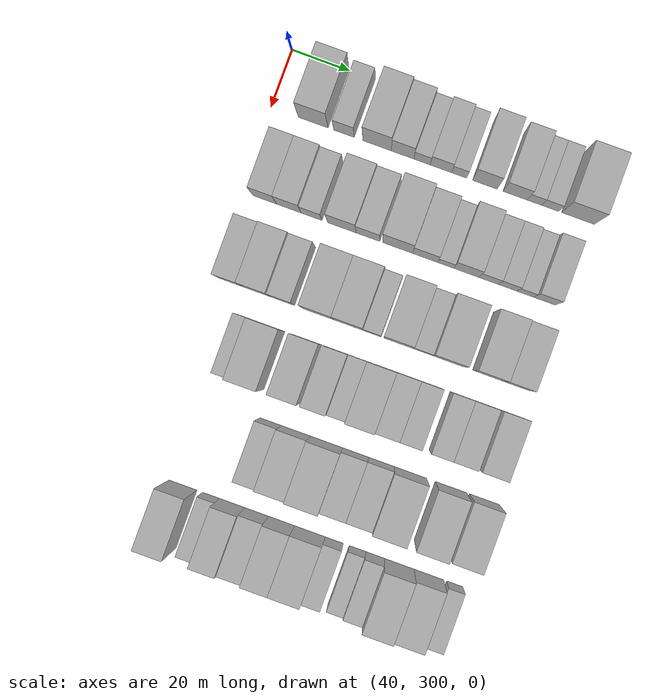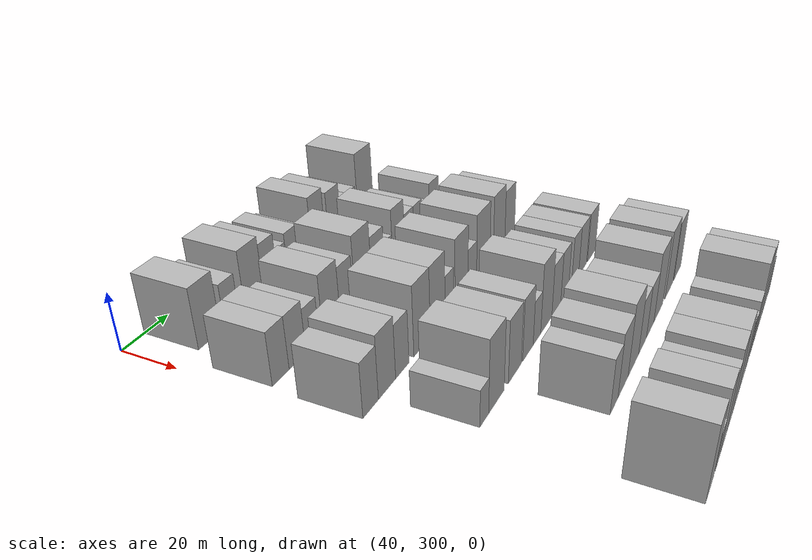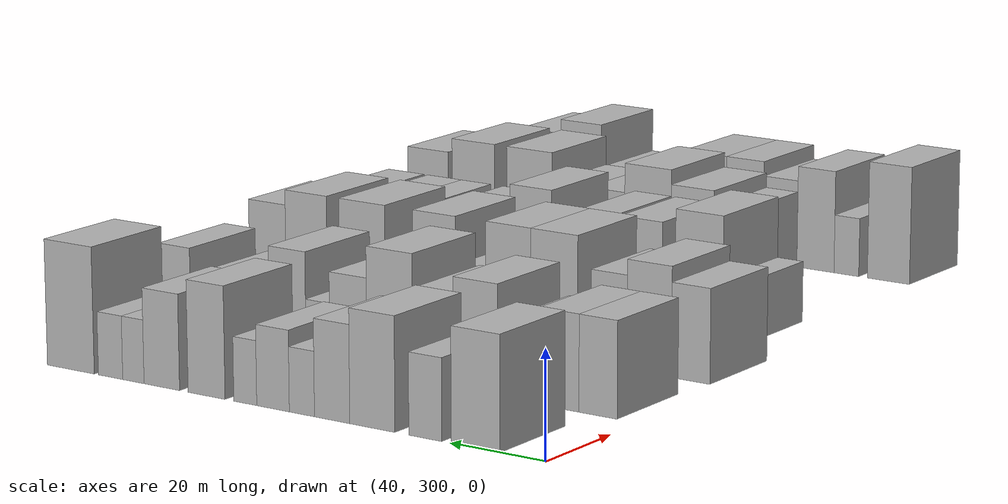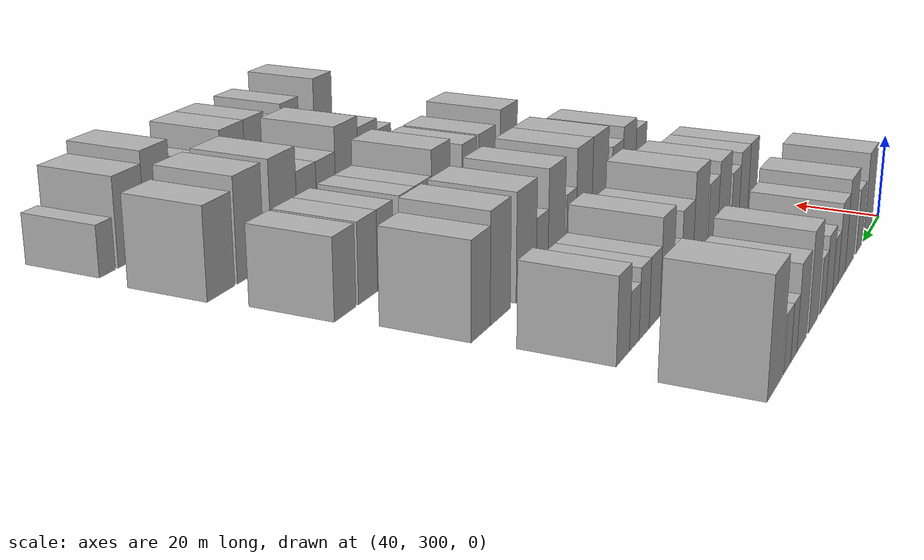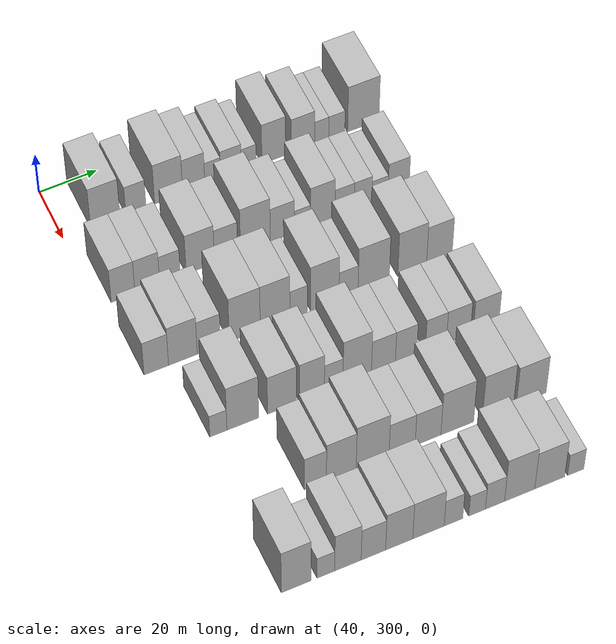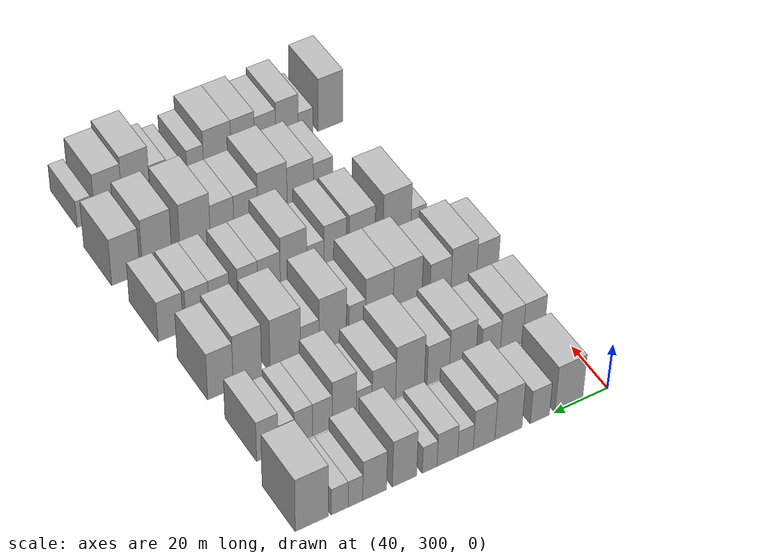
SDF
<sdf version="1.6">
 <world name="default">
  <model name="building_92">
   <static>1</static>
   <pose>50.0000 314.6391 0 0.000000 0.000000 0.000000</pose>
   <link name="link">
    <pose>0 0 10.50 0 0 0</pose>
    <collision name="collision"><geometry><box><size>20.0000 10.2359 21.0000</size></box></geometry></collision>
    <visual name="visual">
     <cast_shadows>0</cast_shadows>
     <geometry><box><size>20.0000 10.2359 21.0000</size></box></geometry>
     <material>
      <script>
       <uri>model://HANNAS_wall/materials/scripts</uri>
       <uri>model://HANNAS_wall/materials/textures</uri>
       <name>vrc/HANNAS_wall</name>
      </script>
     </material>
    </visual>
   </link>
  </model>
  <model name="building_93">
   <static>1</static>
   <pose>50.0000 325.2845 0 0.000000 0.000000 0.000000</pose>
   <link name="link">
    <pose>0 0 7.50 0 0 0</pose>
    <collision name="collision"><geometry><box><size>20.0000 7.0549 15.0000</size></box></geometry></collision>
    <visual name="visual">
     <cast_shadows>0</cast_shadows>
     <geometry><box><size>20.0000 7.0549 15.0000</size></box></geometry>
     <material>
      <script>
       <uri>model://HANNAS_wall/materials/scripts</uri>
       <uri>model://HANNAS_wall/materials/textures</uri>
       <name>vrc/HANNAS_wall</name>
      </script>
     </material>
    </visual>
   </link>
  </model>
  <model name="building_94">
   <static>1</static>
   <pose>50.0000 336.7338 0 0.000000 0.000000 0.000000</pose>
   <link name="link">
    <pose>0 0 10.50 0 0 0</pose>
    <collision name="collision"><geometry><box><size>20.0000 9.8437 21.0000</size></box></geometry></collision>
    <visual name="visual">
     <cast_shadows>0</cast_shadows>
     <geometry><box><size>20.0000 9.8437 21.0000</size></box></geometry>
     <material>
      <script>
       <uri>model://HANNAS_wall/materials/scripts</uri>
       <uri>model://HANNAS_wall/materials/textures</uri>
       <name>vrc/HANNAS_wall</name>
      </script>
     </material>
    </visual>
   </link>
  </model>
  <model name="building_95">
   <static>1</static>
   <pose>50.0000 345.5616 0 0.000000 0.000000 0.000000</pose>
   <link name="link">
    <pose>0 0 9.00 0 0 0</pose>
    <collision name="collision"><geometry><box><size>20.0000 7.8120 18.0000</size></box></geometry></collision>
    <visual name="visual">
     <cast_shadows>0</cast_shadows>
     <geometry><box><size>20.0000 7.8120 18.0000</size></box></geometry>
     <material>
      <script>
       <uri>model://HANNAS_wall/materials/scripts</uri>
       <uri>model://HANNAS_wall/materials/textures</uri>
       <name>vrc/HANNAS_wall</name>
      </script>
     </material>
    </visual>
   </link>
  </model>
  <model name="building_96">
   <static>1</static>
   <pose>50.0000 352.2765 0 0.000000 0.000000 0.000000</pose>
   <link name="link">
    <pose>0 0 6.00 0 0 0</pose>
    <collision name="collision"><geometry><box><size>20.0000 5.6176 12.0000</size></box></geometry></collision>
    <visual name="visual">
     <cast_shadows>0</cast_shadows>
     <geometry><box><size>20.0000 5.6176 12.0000</size></box></geometry>
     <material>
      <script>
       <uri>model://HANNAS_wall/materials/scripts</uri>
       <uri>model://HANNAS_wall/materials/textures</uri>
       <name>vrc/HANNAS_wall</name>
      </script>
     </material>
    </visual>
   </link>
  </model>
  <model name="building_97">
   <static>1</static>
   <pose>50.0000 358.7654 0 0.000000 0.000000 0.000000</pose>
   <link name="link">
    <pose>0 0 7.50 0 0 0</pose>
    <collision name="collision"><geometry><box><size>20.0000 7.3602 15.0000</size></box></geometry></collision>
    <visual name="visual">
     <cast_shadows>0</cast_shadows>
     <geometry><box><size>20.0000 7.3602 15.0000</size></box></geometry>
     <material>
      <script>
       <uri>model://HANNAS_wall/materials/scripts</uri>
       <uri>model://HANNAS_wall/materials/textures</uri>
       <name>vrc/HANNAS_wall</name>
      </script>
     </material>
    </visual>
   </link>
  </model>
  <model name="building_98">
   <static>1</static>
   <pose>50.0000 365.0564 0 0.000000 0.000000 0.000000</pose>
   <link name="link">
    <pose>0 0 6.00 0 0 0</pose>
    <collision name="collision"><geometry><box><size>20.0000 5.2218 12.0000</size></box></geometry></collision>
    <visual name="visual">
     <cast_shadows>0</cast_shadows>
     <geometry><box><size>20.0000 5.2218 12.0000</size></box></geometry>
     <material>
      <script>
       <uri>model://HANNAS_wall/materials/scripts</uri>
       <uri>model://HANNAS_wall/materials/textures</uri>
       <name>vrc/HANNAS_wall</name>
      </script>
     </material>
    </visual>
   </link>
  </model>
  <model name="building_99">
   <static>1</static>
   <pose>50.0000 373.9344 0 0.000000 0.000000 0.000000</pose>
   <link name="link">
    <pose>0 0 10.50 0 0 0</pose>
    <collision name="collision"><geometry><box><size>20.0000 8.5341 21.0000</size></box></geometry></collision>
    <visual name="visual">
     <cast_shadows>0</cast_shadows>
     <geometry><box><size>20.0000 8.5341 21.0000</size></box></geometry>
     <material>
      <script>
       <uri>model://HANNAS_wall/materials/scripts</uri>
       <uri>model://HANNAS_wall/materials/textures</uri>
       <name>vrc/HANNAS_wall</name>
      </script>
     </material>
    </visual>
   </link>
  </model>
  <model name="building_100">
   <static>1</static>
   <pose>50.0000 384.3697 0 0.000000 0.000000 0.000000</pose>
   <link name="link">
    <pose>0 0 9.00 0 0 0</pose>
    <collision name="collision"><geometry><box><size>20.0000 8.3364 18.0000</size></box></geometry></collision>
    <visual name="visual">
     <cast_shadows>0</cast_shadows>
     <geometry><box><size>20.0000 8.3364 18.0000</size></box></geometry>
     <material>
      <script>
       <uri>model://HANNAS_wall/materials/scripts</uri>
       <uri>model://HANNAS_wall/materials/textures</uri>
       <name>vrc/HANNAS_wall</name>
      </script>
     </material>
    </visual>
   </link>
  </model>
  <model name="building_101">
   <static>1</static>
   <pose>50.0000 391.0695 0 0.000000 0.000000 0.000000</pose>
   <link name="link">
    <pose>0 0 6.00 0 0 0</pose>
    <collision name="collision"><geometry><box><size>20.0000 5.0633 12.0000</size></box></geometry></collision>
    <visual name="visual">
     <cast_shadows>0</cast_shadows>
     <geometry><box><size>20.0000 5.0633 12.0000</size></box></geometry>
     <material>
      <script>
       <uri>model://HANNAS_wall/materials/scripts</uri>
       <uri>model://HANNAS_wall/materials/textures</uri>
       <name>vrc/HANNAS_wall</name>
      </script>
     </material>
    </visual>
   </link>
  </model>
  <model name="building_102">
   <static>1</static>
   <pose>50.0000 396.5043 0 0.000000 0.000000 0.000000</pose>
   <link name="link">
    <pose>0 0 6.00 0 0 0</pose>
    <collision name="collision"><geometry><box><size>20.0000 5.8061 12.0000</size></box></geometry></collision>
    <visual name="visual">
     <cast_shadows>0</cast_shadows>
     <geometry><box><size>20.0000 5.8061 12.0000</size></box></geometry>
     <material>
      <script>
       <uri>model://HANNAS_wall/materials/scripts</uri>
       <uri>model://HANNAS_wall/materials/textures</uri>
       <name>vrc/HANNAS_wall</name>
      </script>
     </material>
    </visual>
   </link>
  </model>
  <model name="building_103">
   <static>1</static>
   <pose>50.0000 406.0815 0 0.000000 0.000000 0.000000</pose>
   <link name="link">
    <pose>0 0 12.00 0 0 0</pose>
    <collision name="collision"><geometry><box><size>20.0000 11.3484 24.0000</size></box></geometry></collision>
    <visual name="visual">
     <cast_shadows>0</cast_shadows>
     <geometry><box><size>20.0000 11.3484 24.0000</size></box></geometry>
     <material>
      <script>
       <uri>model://HANNAS_wall/materials/scripts</uri>
       <uri>model://HANNAS_wall/materials/textures</uri>
       <name>vrc/HANNAS_wall</name>
      </script>
     </material>
    </visual>
   </link>
  </model>
  <model name="building_207">
   <static>1</static>
   <pose>79.0000 308.5416 0 0.000000 0.000000 0.000000</pose>
   <link name="link">
    <pose>0 0 9.00 0 0 0</pose>
    <collision name="collision"><geometry><box><size>20.0000 8.1234 18.0000</size></box></geometry></collision>
    <visual name="visual">
     <cast_shadows>0</cast_shadows>
     <geometry><box><size>20.0000 8.1234 18.0000</size></box></geometry>
     <material>
      <script>
       <uri>model://HANNAS_wall/materials/scripts</uri>
       <uri>model://HANNAS_wall/materials/textures</uri>
       <name>vrc/HANNAS_wall</name>
      </script>
     </material>
    </visual>
   </link>
  </model>
  <model name="building_208">
   <static>1</static>
   <pose>79.0000 316.8436 0 0.000000 0.000000 0.000000</pose>
   <link name="link">
    <pose>0 0 9.00 0 0 0</pose>
    <collision name="collision"><geometry><box><size>20.0000 8.4806 18.0000</size></box></geometry></collision>
    <visual name="visual">
     <cast_shadows>0</cast_shadows>
     <geometry><box><size>20.0000 8.4806 18.0000</size></box></geometry>
     <material>
      <script>
       <uri>model://HANNAS_wall/materials/scripts</uri>
       <uri>model://HANNAS_wall/materials/textures</uri>
       <name>vrc/HANNAS_wall</name>
      </script>
     </material>
    </visual>
   </link>
  </model>
  <model name="building_209">
   <static>1</static>
   <pose>79.0000 324.6524 0 0.000000 0.000000 0.000000</pose>
   <link name="link">
    <pose>0 0 7.50 0 0 0</pose>
    <collision name="collision"><geometry><box><size>20.0000 7.1371 15.0000</size></box></geometry></collision>
    <visual name="visual">
     <cast_shadows>0</cast_shadows>
     <geometry><box><size>20.0000 7.1371 15.0000</size></box></geometry>
     <material>
      <script>
       <uri>model://HANNAS_wall/materials/scripts</uri>
       <uri>model://HANNAS_wall/materials/textures</uri>
       <name>vrc/HANNAS_wall</name>
      </script>
     </material>
    </visual>
   </link>
  </model>
  <model name="building_210">
   <static>1</static>
   <pose>79.0000 335.1289 0 0.000000 0.000000 0.000000</pose>
   <link name="link">
    <pose>0 0 10.50 0 0 0</pose>
    <collision name="collision"><geometry><box><size>20.0000 9.8159 21.0000</size></box></geometry></collision>
    <visual name="visual">
     <cast_shadows>0</cast_shadows>
     <geometry><box><size>20.0000 9.8159 21.0000</size></box></geometry>
     <material>
      <script>
       <uri>model://HANNAS_wall/materials/scripts</uri>
       <uri>model://HANNAS_wall/materials/textures</uri>
       <name>vrc/HANNAS_wall</name>
      </script>
     </material>
    </visual>
   </link>
  </model>
  <model name="building_211">
   <static>1</static>
   <pose>79.0000 344.0842 0 0.000000 0.000000 0.000000</pose>
   <link name="link">
    <pose>0 0 9.00 0 0 0</pose>
    <collision name="collision"><geometry><box><size>20.0000 8.0946 18.0000</size></box></geometry></collision>
    <visual name="visual">
     <cast_shadows>0</cast_shadows>
     <geometry><box><size>20.0000 8.0946 18.0000</size></box></geometry>
     <material>
      <script>
       <uri>model://HANNAS_wall/materials/scripts</uri>
       <uri>model://HANNAS_wall/materials/textures</uri>
       <name>vrc/HANNAS_wall</name>
      </script>
     </material>
    </visual>
   </link>
  </model>
  <model name="building_212">
   <static>1</static>
   <pose>79.0000 354.3219 0 0.000000 0.000000 0.000000</pose>
   <link name="link">
    <pose>0 0 12.00 0 0 0</pose>
    <collision name="collision"><geometry><box><size>20.0000 10.3809 24.0000</size></box></geometry></collision>
    <visual name="visual">
     <cast_shadows>0</cast_shadows>
     <geometry><box><size>20.0000 10.3809 24.0000</size></box></geometry>
     <material>
      <script>
       <uri>model://HANNAS_wall/materials/scripts</uri>
       <uri>model://HANNAS_wall/materials/textures</uri>
       <name>vrc/HANNAS_wall</name>
      </script>
     </material>
    </visual>
   </link>
  </model>
  <model name="building_213">
   <static>1</static>
   <pose>79.0000 363.7801 0 0.000000 0.000000 0.000000</pose>
   <link name="link">
    <pose>0 0 9.00 0 0 0</pose>
    <collision name="collision"><geometry><box><size>20.0000 8.5355 18.0000</size></box></geometry></collision>
    <visual name="visual">
     <cast_shadows>0</cast_shadows>
     <geometry><box><size>20.0000 8.5355 18.0000</size></box></geometry>
     <material>
      <script>
       <uri>model://HANNAS_wall/materials/scripts</uri>
       <uri>model://HANNAS_wall/materials/textures</uri>
       <name>vrc/HANNAS_wall</name>
      </script>
     </material>
    </visual>
   </link>
  </model>
  <model name="building_214">
   <static>1</static>
   <pose>79.0000 370.8349 0 0.000000 0.000000 0.000000</pose>
   <link name="link">
    <pose>0 0 6.00 0 0 0</pose>
    <collision name="collision"><geometry><box><size>20.0000 5.5740 12.0000</size></box></geometry></collision>
    <visual name="visual">
     <cast_shadows>0</cast_shadows>
     <geometry><box><size>20.0000 5.5740 12.0000</size></box></geometry>
     <material>
      <script>
       <uri>model://HANNAS_wall/materials/scripts</uri>
       <uri>model://HANNAS_wall/materials/textures</uri>
       <name>vrc/HANNAS_wall</name>
      </script>
     </material>
    </visual>
   </link>
  </model>
  <model name="building_215">
   <static>1</static>
   <pose>79.0000 377.9334 0 0.000000 0.000000 0.000000</pose>
   <link name="link">
    <pose>0 0 10.50 0 0 0</pose>
    <collision name="collision"><geometry><box><size>20.0000 8.6232 21.0000</size></box></geometry></collision>
    <visual name="visual">
     <cast_shadows>0</cast_shadows>
     <geometry><box><size>20.0000 8.6232 21.0000</size></box></geometry>
     <material>
      <script>
       <uri>model://HANNAS_wall/materials/scripts</uri>
       <uri>model://HANNAS_wall/materials/textures</uri>
       <name>vrc/HANNAS_wall</name>
      </script>
     </material>
    </visual>
   </link>
  </model>
  <model name="building_216">
   <static>1</static>
   <pose>79.0000 385.6756 0 0.000000 0.000000 0.000000</pose>
   <link name="link">
    <pose>0 0 7.50 0 0 0</pose>
    <collision name="collision"><geometry><box><size>20.0000 6.8612 15.0000</size></box></geometry></collision>
    <visual name="visual">
     <cast_shadows>0</cast_shadows>
     <geometry><box><size>20.0000 6.8612 15.0000</size></box></geometry>
     <material>
      <script>
       <uri>model://HANNAS_wall/materials/scripts</uri>
       <uri>model://HANNAS_wall/materials/textures</uri>
       <name>vrc/HANNAS_wall</name>
      </script>
     </material>
    </visual>
   </link>
  </model>
  <model name="building_217">
   <static>1</static>
   <pose>79.0000 392.2412 0 0.000000 0.000000 0.000000</pose>
   <link name="link">
    <pose>0 0 7.50 0 0 0</pose>
    <collision name="collision"><geometry><box><size>20.0000 6.2700 15.0000</size></box></geometry></collision>
    <visual name="visual">
     <cast_shadows>0</cast_shadows>
     <geometry><box><size>20.0000 6.2700 15.0000</size></box></geometry>
     <material>
      <script>
       <uri>model://HANNAS_wall/materials/scripts</uri>
       <uri>model://HANNAS_wall/materials/textures</uri>
       <name>vrc/HANNAS_wall</name>
      </script>
     </material>
    </visual>
   </link>
  </model>
  <model name="building_218">
   <static>1</static>
   <pose>79.0000 398.2503 0 0.000000 0.000000 0.000000</pose>
   <link name="link">
    <pose>0 0 6.00 0 0 0</pose>
    <collision name="collision"><geometry><box><size>20.0000 5.7481 12.0000</size></box></geometry></collision>
    <visual name="visual">
     <cast_shadows>0</cast_shadows>
     <geometry><box><size>20.0000 5.7481 12.0000</size></box></geometry>
     <material>
      <script>
       <uri>model://HANNAS_wall/materials/scripts</uri>
       <uri>model://HANNAS_wall/materials/textures</uri>
       <name>vrc/HANNAS_wall</name>
      </script>
     </material>
    </visual>
   </link>
  </model>
  <model name="building_219">
   <static>1</static>
   <pose>79.0000 404.8839 0 0.000000 0.000000 0.000000</pose>
   <link name="link">
    <pose>0 0 9.00 0 0 0</pose>
    <collision name="collision"><geometry><box><size>20.0000 7.5190 18.0000</size></box></geometry></collision>
    <visual name="visual">
     <cast_shadows>0</cast_shadows>
     <geometry><box><size>20.0000 7.5190 18.0000</size></box></geometry>
     <material>
      <script>
       <uri>model://HANNAS_wall/materials/scripts</uri>
       <uri>model://HANNAS_wall/materials/textures</uri>
       <name>vrc/HANNAS_wall</name>
      </script>
     </material>
    </visual>
   </link>
  </model>
  <model name="building_317">
   <static>1</static>
   <pose>108.0000 307.4348 0 0.000000 0.000000 0.000000</pose>
   <link name="link">
    <pose>0 0 9.00 0 0 0</pose>
    <collision name="collision"><geometry><box><size>20.0000 8.3057 18.0000</size></box></geometry></collision>
    <visual name="visual">
     <cast_shadows>0</cast_shadows>
     <geometry><box><size>20.0000 8.3057 18.0000</size></box></geometry>
     <material>
      <script>
       <uri>model://HANNAS_wall/materials/scripts</uri>
       <uri>model://HANNAS_wall/materials/textures</uri>
       <name>vrc/HANNAS_wall</name>
      </script>
     </material>
    </visual>
   </link>
  </model>
  <model name="building_318">
   <static>1</static>
   <pose>108.0000 316.4542 0 0.000000 0.000000 0.000000</pose>
   <link name="link">
    <pose>0 0 10.50 0 0 0</pose>
    <collision name="collision"><geometry><box><size>20.0000 9.7331 21.0000</size></box></geometry></collision>
    <visual name="visual">
     <cast_shadows>0</cast_shadows>
     <geometry><box><size>20.0000 9.7331 21.0000</size></box></geometry>
     <material>
      <script>
       <uri>model://HANNAS_wall/materials/scripts</uri>
       <uri>model://HANNAS_wall/materials/textures</uri>
       <name>vrc/HANNAS_wall</name>
      </script>
     </material>
    </visual>
   </link>
  </model>
  <model name="building_319">
   <static>1</static>
   <pose>108.0000 325.3017 0 0.000000 0.000000 0.000000</pose>
   <link name="link">
    <pose>0 0 9.00 0 0 0</pose>
    <collision name="collision"><geometry><box><size>20.0000 7.9619 18.0000</size></box></geometry></collision>
    <visual name="visual">
     <cast_shadows>0</cast_shadows>
     <geometry><box><size>20.0000 7.9619 18.0000</size></box></geometry>
     <material>
      <script>
       <uri>model://HANNAS_wall/materials/scripts</uri>
       <uri>model://HANNAS_wall/materials/textures</uri>
       <name>vrc/HANNAS_wall</name>
      </script>
     </material>
    </visual>
   </link>
  </model>
  <model name="building_320">
   <static>1</static>
   <pose>108.0000 337.5891 0 0.000000 0.000000 0.000000</pose>
   <link name="link">
    <pose>0 0 12.00 0 0 0</pose>
    <collision name="collision"><geometry><box><size>20.0000 10.6128 24.0000</size></box></geometry></collision>
    <visual name="visual">
     <cast_shadows>0</cast_shadows>
     <geometry><box><size>20.0000 10.6128 24.0000</size></box></geometry>
     <material>
      <script>
       <uri>model://HANNAS_wall/materials/scripts</uri>
       <uri>model://HANNAS_wall/materials/textures</uri>
       <name>vrc/HANNAS_wall</name>
      </script>
     </material>
    </visual>
   </link>
  </model>
  <model name="building_321">
   <static>1</static>
   <pose>108.0000 348.0040 0 0.000000 0.000000 0.000000</pose>
   <link name="link">
    <pose>0 0 12.00 0 0 0</pose>
    <collision name="collision"><geometry><box><size>20.0000 10.2171 24.0000</size></box></geometry></collision>
    <visual name="visual">
     <cast_shadows>0</cast_shadows>
     <geometry><box><size>20.0000 10.2171 24.0000</size></box></geometry>
     <material>
      <script>
       <uri>model://HANNAS_wall/materials/scripts</uri>
       <uri>model://HANNAS_wall/materials/textures</uri>
       <name>vrc/HANNAS_wall</name>
      </script>
     </material>
    </visual>
   </link>
  </model>
  <model name="building_322">
   <static>1</static>
   <pose>108.0000 356.1308 0 0.000000 0.000000 0.000000</pose>
   <link name="link">
    <pose>0 0 7.50 0 0 0</pose>
    <collision name="collision"><geometry><box><size>20.0000 6.0365 15.0000</size></box></geometry></collision>
    <visual name="visual">
     <cast_shadows>0</cast_shadows>
     <geometry><box><size>20.0000 6.0365 15.0000</size></box></geometry>
     <material>
      <script>
       <uri>model://HANNAS_wall/materials/scripts</uri>
       <uri>model://HANNAS_wall/materials/textures</uri>
       <name>vrc/HANNAS_wall</name>
      </script>
     </material>
    </visual>
   </link>
  </model>
  <model name="building_323">
   <static>1</static>
   <pose>108.0000 365.1079 0 0.000000 0.000000 0.000000</pose>
   <link name="link">
    <pose>0 0 12.00 0 0 0</pose>
    <collision name="collision"><geometry><box><size>20.0000 9.9177 24.0000</size></box></geometry></collision>
    <visual name="visual">
     <cast_shadows>0</cast_shadows>
     <geometry><box><size>20.0000 9.9177 24.0000</size></box></geometry>
     <material>
      <script>
       <uri>model://HANNAS_wall/materials/scripts</uri>
       <uri>model://HANNAS_wall/materials/textures</uri>
       <name>vrc/HANNAS_wall</name>
      </script>
     </material>
    </visual>
   </link>
  </model>
  <model name="building_324">
   <static>1</static>
   <pose>108.0000 373.3950 0 0.000000 0.000000 0.000000</pose>
   <link name="link">
    <pose>0 0 7.50 0 0 0</pose>
    <collision name="collision"><geometry><box><size>20.0000 6.6564 15.0000</size></box></geometry></collision>
    <visual name="visual">
     <cast_shadows>0</cast_shadows>
     <geometry><box><size>20.0000 6.6564 15.0000</size></box></geometry>
     <material>
      <script>
       <uri>model://HANNAS_wall/materials/scripts</uri>
       <uri>model://HANNAS_wall/materials/textures</uri>
       <name>vrc/HANNAS_wall</name>
      </script>
     </material>
    </visual>
   </link>
  </model>
  <model name="building_325">
   <static>1</static>
   <pose>108.0000 382.1819 0 0.000000 0.000000 0.000000</pose>
   <link name="link">
    <pose>0 0 12.00 0 0 0</pose>
    <collision name="collision"><geometry><box><size>20.0000 10.9174 24.0000</size></box></geometry></collision>
    <visual name="visual">
     <cast_shadows>0</cast_shadows>
     <geometry><box><size>20.0000 10.9174 24.0000</size></box></geometry>
     <material>
      <script>
       <uri>model://HANNAS_wall/materials/scripts</uri>
       <uri>model://HANNAS_wall/materials/textures</uri>
       <name>vrc/HANNAS_wall</name>
      </script>
     </material>
    </visual>
   </link>
  </model>
  <model name="building_326">
   <static>1</static>
   <pose>108.0000 395.6970 0 0.000000 0.000000 0.000000</pose>
   <link name="link">
    <pose>0 0 12.00 0 0 0</pose>
    <collision name="collision"><geometry><box><size>20.0000 10.1128 24.0000</size></box></geometry></collision>
    <visual name="visual">
     <cast_shadows>0</cast_shadows>
     <geometry><box><size>20.0000 10.1128 24.0000</size></box></geometry>
     <material>
      <script>
       <uri>model://HANNAS_wall/materials/scripts</uri>
       <uri>model://HANNAS_wall/materials/textures</uri>
       <name>vrc/HANNAS_wall</name>
      </script>
     </material>
    </visual>
   </link>
  </model>
  <model name="building_327">
   <static>1</static>
   <pose>108.0000 405.2794 0 0.000000 0.000000 0.000000</pose>
   <link name="link">
    <pose>0 0 10.50 0 0 0</pose>
    <collision name="collision"><geometry><box><size>20.0000 9.0520 21.0000</size></box></geometry></collision>
    <visual name="visual">
     <cast_shadows>0</cast_shadows>
     <geometry><box><size>20.0000 9.0520 21.0000</size></box></geometry>
     <material>
      <script>
       <uri>model://HANNAS_wall/materials/scripts</uri>
       <uri>model://HANNAS_wall/materials/textures</uri>
       <name>vrc/HANNAS_wall</name>
      </script>
     </material>
    </visual>
   </link>
  </model>
  <model name="building_428">
   <static>1</static>
   <pose>137.0000 315.6591 0 0.000000 0.000000 0.000000</pose>
   <link name="link">
    <pose>0 0 6.00 0 0 0</pose>
    <collision name="collision"><geometry><box><size>20.0000 5.7542 12.0000</size></box></geometry></collision>
    <visual name="visual">
     <cast_shadows>0</cast_shadows>
     <geometry><box><size>20.0000 5.7542 12.0000</size></box></geometry>
     <material>
      <script>
       <uri>model://HANNAS_wall/materials/scripts</uri>
       <uri>model://HANNAS_wall/materials/textures</uri>
       <name>vrc/HANNAS_wall</name>
      </script>
     </material>
    </visual>
   </link>
  </model>
  <model name="building_429">
   <static>1</static>
   <pose>137.0000 323.8834 0 0.000000 0.000000 0.000000</pose>
   <link name="link">
    <pose>0 0 12.00 0 0 0</pose>
    <collision name="collision"><geometry><box><size>20.0000 10.6945 24.0000</size></box></geometry></collision>
    <visual name="visual">
     <cast_shadows>0</cast_shadows>
     <geometry><box><size>20.0000 10.6945 24.0000</size></box></geometry>
     <material>
      <script>
       <uri>model://HANNAS_wall/materials/scripts</uri>
       <uri>model://HANNAS_wall/materials/textures</uri>
       <name>vrc/HANNAS_wall</name>
      </script>
     </material>
    </visual>
   </link>
  </model>
  <model name="building_430">
   <static>1</static>
   <pose>137.0000 337.1143 0 0.000000 0.000000 0.000000</pose>
   <link name="link">
    <pose>0 0 10.50 0 0 0</pose>
    <collision name="collision"><geometry><box><size>20.0000 9.7673 21.0000</size></box></geometry></collision>
    <visual name="visual">
     <cast_shadows>0</cast_shadows>
     <geometry><box><size>20.0000 9.7673 21.0000</size></box></geometry>
     <material>
      <script>
       <uri>model://HANNAS_wall/materials/scripts</uri>
       <uri>model://HANNAS_wall/materials/textures</uri>
       <name>vrc/HANNAS_wall</name>
      </script>
     </material>
    </visual>
   </link>
  </model>
  <model name="building_431">
   <static>1</static>
   <pose>137.0000 347.2452 0 0.000000 0.000000 0.000000</pose>
   <link name="link">
    <pose>0 0 10.50 0 0 0</pose>
    <collision name="collision"><geometry><box><size>20.0000 8.4945 21.0000</size></box></geometry></collision>
    <visual name="visual">
     <cast_shadows>0</cast_shadows>
     <geometry><box><size>20.0000 8.4945 21.0000</size></box></geometry>
     <material>
      <script>
       <uri>model://HANNAS_wall/materials/scripts</uri>
       <uri>model://HANNAS_wall/materials/textures</uri>
       <name>vrc/HANNAS_wall</name>
      </script>
     </material>
    </visual>
   </link>
  </model>
  <model name="building_432">
   <static>1</static>
   <pose>137.0000 354.6520 0 0.000000 0.000000 0.000000</pose>
   <link name="link">
    <pose>0 0 7.50 0 0 0</pose>
    <collision name="collision"><geometry><box><size>20.0000 6.3190 15.0000</size></box></geometry></collision>
    <visual name="visual">
     <cast_shadows>0</cast_shadows>
     <geometry><box><size>20.0000 6.3190 15.0000</size></box></geometry>
     <material>
      <script>
       <uri>model://HANNAS_wall/materials/scripts</uri>
       <uri>model://HANNAS_wall/materials/textures</uri>
       <name>vrc/HANNAS_wall</name>
      </script>
     </material>
    </visual>
   </link>
  </model>
  <model name="building_433">
   <static>1</static>
   <pose>137.0000 362.7062 0 0.000000 0.000000 0.000000</pose>
   <link name="link">
    <pose>0 0 12.00 0 0 0</pose>
    <collision name="collision"><geometry><box><size>20.0000 9.7895 24.0000</size></box></geometry></collision>
    <visual name="visual">
     <cast_shadows>0</cast_shadows>
     <geometry><box><size>20.0000 9.7895 24.0000</size></box></geometry>
     <material>
      <script>
       <uri>model://HANNAS_wall/materials/scripts</uri>
       <uri>model://HANNAS_wall/materials/textures</uri>
       <name>vrc/HANNAS_wall</name>
      </script>
     </material>
    </visual>
   </link>
  </model>
  <model name="building_434">
   <static>1</static>
   <pose>137.0000 371.7099 0 0.000000 0.000000 0.000000</pose>
   <link name="link">
    <pose>0 0 9.00 0 0 0</pose>
    <collision name="collision"><geometry><box><size>20.0000 8.2178 18.0000</size></box></geometry></collision>
    <visual name="visual">
     <cast_shadows>0</cast_shadows>
     <geometry><box><size>20.0000 8.2178 18.0000</size></box></geometry>
     <material>
      <script>
       <uri>model://HANNAS_wall/materials/scripts</uri>
       <uri>model://HANNAS_wall/materials/textures</uri>
       <name>vrc/HANNAS_wall</name>
      </script>
     </material>
    </visual>
   </link>
  </model>
  <model name="building_435">
   <static>1</static>
   <pose>137.0000 379.5073 0 0.000000 0.000000 0.000000</pose>
   <link name="link">
    <pose>0 0 9.00 0 0 0</pose>
    <collision name="collision"><geometry><box><size>20.0000 7.3770 18.0000</size></box></geometry></collision>
    <visual name="visual">
     <cast_shadows>0</cast_shadows>
     <geometry><box><size>20.0000 7.3770 18.0000</size></box></geometry>
     <material>
      <script>
       <uri>model://HANNAS_wall/materials/scripts</uri>
       <uri>model://HANNAS_wall/materials/textures</uri>
       <name>vrc/HANNAS_wall</name>
      </script>
     </material>
    </visual>
   </link>
  </model>
  <model name="building_436">
   <static>1</static>
   <pose>137.0000 389.8574 0 0.000000 0.000000 0.000000</pose>
   <link name="link">
    <pose>0 0 9.00 0 0 0</pose>
    <collision name="collision"><geometry><box><size>20.0000 7.3232 18.0000</size></box></geometry></collision>
    <visual name="visual">
     <cast_shadows>0</cast_shadows>
     <geometry><box><size>20.0000 7.3232 18.0000</size></box></geometry>
     <material>
      <script>
       <uri>model://HANNAS_wall/materials/scripts</uri>
       <uri>model://HANNAS_wall/materials/textures</uri>
       <name>vrc/HANNAS_wall</name>
      </script>
     </material>
    </visual>
   </link>
  </model>
  <model name="building_437">
   <static>1</static>
   <pose>137.0000 397.7015 0 0.000000 0.000000 0.000000</pose>
   <link name="link">
    <pose>0 0 9.00 0 0 0</pose>
    <collision name="collision"><geometry><box><size>20.0000 8.3649 18.0000</size></box></geometry></collision>
    <visual name="visual">
     <cast_shadows>0</cast_shadows>
     <geometry><box><size>20.0000 8.3649 18.0000</size></box></geometry>
     <material>
      <script>
       <uri>model://HANNAS_wall/materials/scripts</uri>
       <uri>model://HANNAS_wall/materials/textures</uri>
       <name>vrc/HANNAS_wall</name>
      </script>
     </material>
    </visual>
   </link>
  </model>
  <model name="building_438">
   <static>1</static>
   <pose>137.0000 407.3667 0 0.000000 0.000000 0.000000</pose>
   <link name="link">
    <pose>0 0 9.00 0 0 0</pose>
    <collision name="collision"><geometry><box><size>20.0000 8.9656 18.0000</size></box></geometry></collision>
    <visual name="visual">
     <cast_shadows>0</cast_shadows>
     <geometry><box><size>20.0000 8.9656 18.0000</size></box></geometry>
     <material>
      <script>
       <uri>model://HANNAS_wall/materials/scripts</uri>
       <uri>model://HANNAS_wall/materials/textures</uri>
       <name>vrc/HANNAS_wall</name>
      </script>
     </material>
    </visual>
   </link>
  </model>
  <model name="building_546">
   <static>1</static>
   <pose>166.0000 334.9736 0 0.000000 0.000000 0.000000</pose>
   <link name="link">
    <pose>0 0 9.00 0 0 0</pose>
    <collision name="collision"><geometry><box><size>20.0000 7.3625 18.0000</size></box></geometry></collision>
    <visual name="visual">
     <cast_shadows>0</cast_shadows>
     <geometry><box><size>20.0000 7.3625 18.0000</size></box></geometry>
     <material>
      <script>
       <uri>model://HANNAS_wall/materials/scripts</uri>
       <uri>model://HANNAS_wall/materials/textures</uri>
       <name>vrc/HANNAS_wall</name>
      </script>
     </material>
    </visual>
   </link>
  </model>
  <model name="building_547">
   <static>1</static>
   <pose>166.0000 343.6535 0 0.000000 0.000000 0.000000</pose>
   <link name="link">
    <pose>0 0 10.50 0 0 0</pose>
    <collision name="collision"><geometry><box><size>20.0000 9.9973 21.0000</size></box></geometry></collision>
    <visual name="visual">
     <cast_shadows>0</cast_shadows>
     <geometry><box><size>20.0000 9.9973 21.0000</size></box></geometry>
     <material>
      <script>
       <uri>model://HANNAS_wall/materials/scripts</uri>
       <uri>model://HANNAS_wall/materials/textures</uri>
       <name>vrc/HANNAS_wall</name>
      </script>
     </material>
    </visual>
   </link>
  </model>
  <model name="building_548">
   <static>1</static>
   <pose>166.0000 354.1891 0 0.000000 0.000000 0.000000</pose>
   <link name="link">
    <pose>0 0 12.00 0 0 0</pose>
    <collision name="collision"><geometry><box><size>20.0000 11.0739 24.0000</size></box></geometry></collision>
    <visual name="visual">
     <cast_shadows>0</cast_shadows>
     <geometry><box><size>20.0000 11.0739 24.0000</size></box></geometry>
     <material>
      <script>
       <uri>model://HANNAS_wall/materials/scripts</uri>
       <uri>model://HANNAS_wall/materials/textures</uri>
       <name>vrc/HANNAS_wall</name>
      </script>
     </material>
    </visual>
   </link>
  </model>
  <model name="building_549">
   <static>1</static>
   <pose>166.0000 364.1571 0 0.000000 0.000000 0.000000</pose>
   <link name="link">
    <pose>0 0 9.00 0 0 0</pose>
    <collision name="collision"><geometry><box><size>20.0000 8.8621 18.0000</size></box></geometry></collision>
    <visual name="visual">
     <cast_shadows>0</cast_shadows>
     <geometry><box><size>20.0000 8.8621 18.0000</size></box></geometry>
     <material>
      <script>
       <uri>model://HANNAS_wall/materials/scripts</uri>
       <uri>model://HANNAS_wall/materials/textures</uri>
       <name>vrc/HANNAS_wall</name>
      </script>
     </material>
    </visual>
   </link>
  </model>
  <model name="building_550">
   <static>1</static>
   <pose>166.0000 372.9795 0 0.000000 0.000000 0.000000</pose>
   <link name="link">
    <pose>0 0 9.00 0 0 0</pose>
    <collision name="collision"><geometry><box><size>20.0000 8.7829 18.0000</size></box></geometry></collision>
    <visual name="visual">
     <cast_shadows>0</cast_shadows>
     <geometry><box><size>20.0000 8.7829 18.0000</size></box></geometry>
     <material>
      <script>
       <uri>model://HANNAS_wall/materials/scripts</uri>
       <uri>model://HANNAS_wall/materials/textures</uri>
       <name>vrc/HANNAS_wall</name>
      </script>
     </material>
    </visual>
   </link>
  </model>
  <model name="building_551">
   <static>1</static>
   <pose>166.0000 382.9670 0 0.000000 0.000000 0.000000</pose>
   <link name="link">
    <pose>0 0 12.00 0 0 0</pose>
    <collision name="collision"><geometry><box><size>20.0000 11.1921 24.0000</size></box></geometry></collision>
    <visual name="visual">
     <cast_shadows>0</cast_shadows>
     <geometry><box><size>20.0000 11.1921 24.0000</size></box></geometry>
     <material>
      <script>
       <uri>model://HANNAS_wall/materials/scripts</uri>
       <uri>model://HANNAS_wall/materials/textures</uri>
       <name>vrc/HANNAS_wall</name>
      </script>
     </material>
    </visual>
   </link>
  </model>
  <model name="building_552">
   <static>1</static>
   <pose>166.0000 396.9219 0 0.000000 0.000000 0.000000</pose>
   <link name="link">
    <pose>0 0 12.00 0 0 0</pose>
    <collision name="collision"><geometry><box><size>20.0000 10.7177 24.0000</size></box></geometry></collision>
    <visual name="visual">
     <cast_shadows>0</cast_shadows>
     <geometry><box><size>20.0000 10.7177 24.0000</size></box></geometry>
     <material>
      <script>
       <uri>model://HANNAS_wall/materials/scripts</uri>
       <uri>model://HANNAS_wall/materials/textures</uri>
       <name>vrc/HANNAS_wall</name>
      </script>
     </material>
    </visual>
   </link>
  </model>
  <model name="building_553">
   <static>1</static>
   <pose>166.0000 408.4272 0 0.000000 0.000000 0.000000</pose>
   <link name="link">
    <pose>0 0 10.50 0 0 0</pose>
    <collision name="collision"><geometry><box><size>20.0000 10.2929 21.0000</size></box></geometry></collision>
    <visual name="visual">
     <cast_shadows>0</cast_shadows>
     <geometry><box><size>20.0000 10.2929 21.0000</size></box></geometry>
     <material>
      <script>
       <uri>model://HANNAS_wall/materials/scripts</uri>
       <uri>model://HANNAS_wall/materials/textures</uri>
       <name>vrc/HANNAS_wall</name>
      </script>
     </material>
    </visual>
   </link>
  </model>
  <model name="building_652">
   <static>1</static>
   <pose>195.0000 315.2109 0 0.000000 0.000000 0.000000</pose>
   <link name="link">
    <pose>0 0 12.00 0 0 0</pose>
    <collision name="collision"><geometry><box><size>20.0000 9.6859 24.0000</size></box></geometry></collision>
    <visual name="visual">
     <cast_shadows>0</cast_shadows>
     <geometry><box><size>20.0000 9.6859 24.0000</size></box></geometry>
     <material>
      <script>
       <uri>model://HANNAS_wall/materials/scripts</uri>
       <uri>model://HANNAS_wall/materials/textures</uri>
       <name>vrc/HANNAS_wall</name>
      </script>
     </material>
    </visual>
   </link>
  </model>
  <model name="building_653">
   <static>1</static>
   <pose>195.0000 324.9436 0 0.000000 0.000000 0.000000</pose>
   <link name="link">
    <pose>0 0 6.00 0 0 0</pose>
    <collision name="collision"><geometry><box><size>20.0000 5.7794 12.0000</size></box></geometry></collision>
    <visual name="visual">
     <cast_shadows>0</cast_shadows>
     <geometry><box><size>20.0000 5.7794 12.0000</size></box></geometry>
     <material>
      <script>
       <uri>model://HANNAS_wall/materials/scripts</uri>
       <uri>model://HANNAS_wall/materials/textures</uri>
       <name>vrc/HANNAS_wall</name>
      </script>
     </material>
    </visual>
   </link>
  </model>
  <model name="building_654">
   <static>1</static>
   <pose>195.0000 332.2063 0 0.000000 0.000000 0.000000</pose>
   <link name="link">
    <pose>0 0 10.50 0 0 0</pose>
    <collision name="collision"><geometry><box><size>20.0000 8.7460 21.0000</size></box></geometry></collision>
    <visual name="visual">
     <cast_shadows>0</cast_shadows>
     <geometry><box><size>20.0000 8.7460 21.0000</size></box></geometry>
     <material>
      <script>
       <uri>model://HANNAS_wall/materials/scripts</uri>
       <uri>model://HANNAS_wall/materials/textures</uri>
       <name>vrc/HANNAS_wall</name>
      </script>
     </material>
    </visual>
   </link>
  </model>
  <model name="building_655">
   <static>1</static>
   <pose>195.0000 340.6324 0 0.000000 0.000000 0.000000</pose>
   <link name="link">
    <pose>0 0 9.00 0 0 0</pose>
    <collision name="collision"><geometry><box><size>20.0000 8.1063 18.0000</size></box></geometry></collision>
    <visual name="visual">
     <cast_shadows>0</cast_shadows>
     <geometry><box><size>20.0000 8.1063 18.0000</size></box></geometry>
     <material>
      <script>
       <uri>model://HANNAS_wall/materials/scripts</uri>
       <uri>model://HANNAS_wall/materials/textures</uri>
       <name>vrc/HANNAS_wall</name>
      </script>
     </material>
    </visual>
   </link>
  </model>
  <model name="building_656">
   <static>1</static>
   <pose>195.0000 349.1981 0 0.000000 0.000000 0.000000</pose>
   <link name="link">
    <pose>0 0 10.50 0 0 0</pose>
    <collision name="collision"><geometry><box><size>20.0000 9.0249 21.0000</size></box></geometry></collision>
    <visual name="visual">
     <cast_shadows>0</cast_shadows>
     <geometry><box><size>20.0000 9.0249 21.0000</size></box></geometry>
     <material>
      <script>
       <uri>model://HANNAS_wall/materials/scripts</uri>
       <uri>model://HANNAS_wall/materials/textures</uri>
       <name>vrc/HANNAS_wall</name>
      </script>
     </material>
    </visual>
   </link>
  </model>
  <model name="building_657">
   <static>1</static>
   <pose>195.0000 358.9481 0 0.000000 0.000000 0.000000</pose>
   <link name="link">
    <pose>0 0 10.50 0 0 0</pose>
    <collision name="collision"><geometry><box><size>20.0000 10.4751 21.0000</size></box></geometry></collision>
    <visual name="visual">
     <cast_shadows>0</cast_shadows>
     <geometry><box><size>20.0000 10.4751 21.0000</size></box></geometry>
     <material>
      <script>
       <uri>model://HANNAS_wall/materials/scripts</uri>
       <uri>model://HANNAS_wall/materials/textures</uri>
       <name>vrc/HANNAS_wall</name>
      </script>
     </material>
    </visual>
   </link>
  </model>
  <model name="building_658">
   <static>1</static>
   <pose>195.0000 367.3199 0 0.000000 0.000000 0.000000</pose>
   <link name="link">
    <pose>0 0 7.50 0 0 0</pose>
    <collision name="collision"><geometry><box><size>20.0000 6.2685 15.0000</size></box></geometry></collision>
    <visual name="visual">
     <cast_shadows>0</cast_shadows>
     <geometry><box><size>20.0000 6.2685 15.0000</size></box></geometry>
     <material>
      <script>
       <uri>model://HANNAS_wall/materials/scripts</uri>
       <uri>model://HANNAS_wall/materials/textures</uri>
       <name>vrc/HANNAS_wall</name>
      </script>
     </material>
    </visual>
   </link>
  </model>
  <model name="building_659">
   <static>1</static>
   <pose>195.0000 375.2692 0 0.000000 0.000000 0.000000</pose>
   <link name="link">
    <pose>0 0 6.00 0 0 0</pose>
    <collision name="collision"><geometry><box><size>20.0000 5.6300 12.0000</size></box></geometry></collision>
    <visual name="visual">
     <cast_shadows>0</cast_shadows>
     <geometry><box><size>20.0000 5.6300 12.0000</size></box></geometry>
     <material>
      <script>
       <uri>model://HANNAS_wall/materials/scripts</uri>
       <uri>model://HANNAS_wall/materials/textures</uri>
       <name>vrc/HANNAS_wall</name>
      </script>
     </material>
    </visual>
   </link>
  </model>
  <model name="building_660">
   <static>1</static>
   <pose>195.0000 381.3157 0 0.000000 0.000000 0.000000</pose>
   <link name="link">
    <pose>0 0 7.50 0 0 0</pose>
    <collision name="collision"><geometry><box><size>20.0000 6.4631 15.0000</size></box></geometry></collision>
    <visual name="visual">
     <cast_shadows>0</cast_shadows>
     <geometry><box><size>20.0000 6.4631 15.0000</size></box></geometry>
     <material>
      <script>
       <uri>model://HANNAS_wall/materials/scripts</uri>
       <uri>model://HANNAS_wall/materials/textures</uri>
       <name>vrc/HANNAS_wall</name>
      </script>
     </material>
    </visual>
   </link>
  </model>
  <model name="building_661">
   <static>1</static>
   <pose>195.0000 389.6716 0 0.000000 0.000000 0.000000</pose>
   <link name="link">
    <pose>0 0 12.00 0 0 0</pose>
    <collision name="collision"><geometry><box><size>20.0000 10.2487 24.0000</size></box></geometry></collision>
    <visual name="visual">
     <cast_shadows>0</cast_shadows>
     <geometry><box><size>20.0000 10.2487 24.0000</size></box></geometry>
     <material>
      <script>
       <uri>model://HANNAS_wall/materials/scripts</uri>
       <uri>model://HANNAS_wall/materials/textures</uri>
       <name>vrc/HANNAS_wall</name>
      </script>
     </material>
    </visual>
   </link>
  </model>
  <model name="building_662">
   <static>1</static>
   <pose>195.0000 399.8915 0 0.000000 0.000000 0.000000</pose>
   <link name="link">
    <pose>0 0 10.50 0 0 0</pose>
    <collision name="collision"><geometry><box><size>20.0000 10.1910 21.0000</size></box></geometry></collision>
    <visual name="visual">
     <cast_shadows>0</cast_shadows>
     <geometry><box><size>20.0000 10.1910 21.0000</size></box></geometry>
     <material>
      <script>
       <uri>model://HANNAS_wall/materials/scripts</uri>
       <uri>model://HANNAS_wall/materials/textures</uri>
       <name>vrc/HANNAS_wall</name>
      </script>
     </material>
    </visual>
   </link>
  </model>
  <model name="building_663">
   <static>1</static>
   <pose>195.0000 408.7613 0 0.000000 0.000000 0.000000</pose>
   <link name="link">
    <pose>0 0 6.00 0 0 0</pose>
    <collision name="collision"><geometry><box><size>20.0000 5.5486 12.0000</size></box></geometry></collision>
    <visual name="visual">
     <cast_shadows>0</cast_shadows>
     <geometry><box><size>20.0000 5.5486 12.0000</size></box></geometry>
     <material>
      <script>
       <uri>model://HANNAS_wall/materials/scripts</uri>
       <uri>model://HANNAS_wall/materials/textures</uri>
       <name>vrc/HANNAS_wall</name>
      </script>
     </material>
    </visual>
   </link>
  </model>
 </world>
</sdf>
